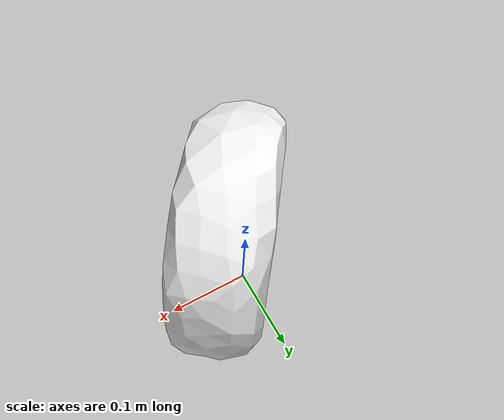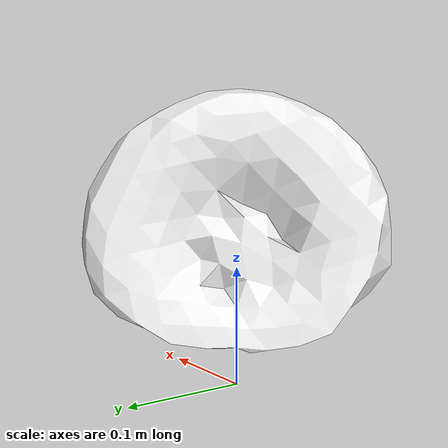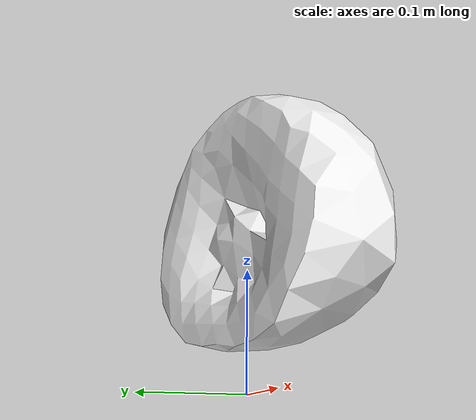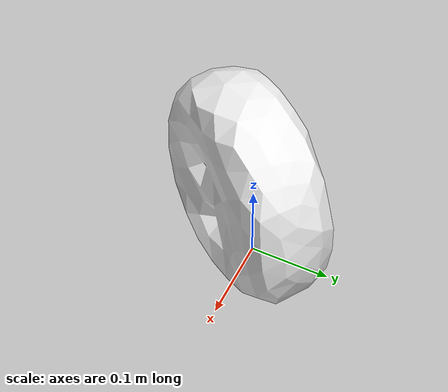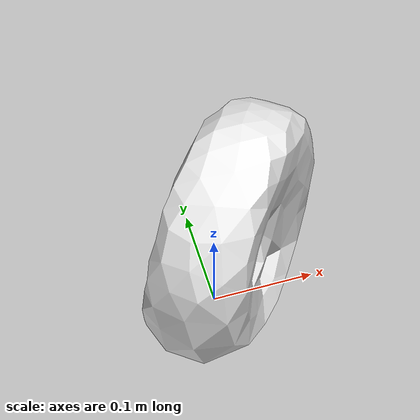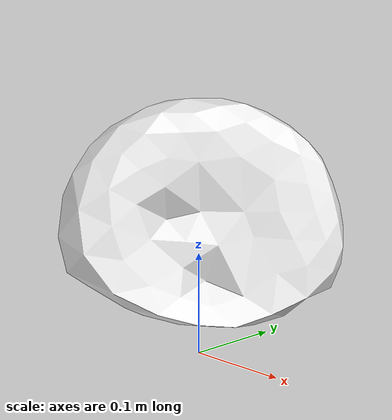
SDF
<?xml version="1.0" ?><sdf version="1.5"><model name="conti-tire">
<link name="link">
<pose>0 0 0 0 0 0</pose>
<inertial>
<pose>0.0138185 -0.0064935 0.140867 0 0 0</pose>
<mass>4.565</mass>
<inertia>
<ixx>0.0380609</ixx>
<ixy>0</ixy><iyy>0.0341649</iyy>
<ixz>0</ixz><iyz>0</iyz><izz>0.0371805</izz>
</inertia>
</inertial>
<visual name="visual">
<pose>0 0 0 0 0 0</pose>
<geometry><mesh><uri>model://conti-tire/meshes/conti-tire.dae</uri></mesh></geometry>
<material><script><uri>file://media/materials/scripts/gazebo.material</uri><name>Gazebo/WhiteGlow</name></script></material></visual>
<collision name="collision"><pose>0 0 0 0 0 0</pose><geometry><mesh><uri>model://conti-tire/meshes/conti-tire.dae</uri></mesh></geometry>
<surface><friction><ode><mu>1.000000</mu><mu2>1.000000</mu2></ode></friction></surface>
</collision></link></model></sdf>
